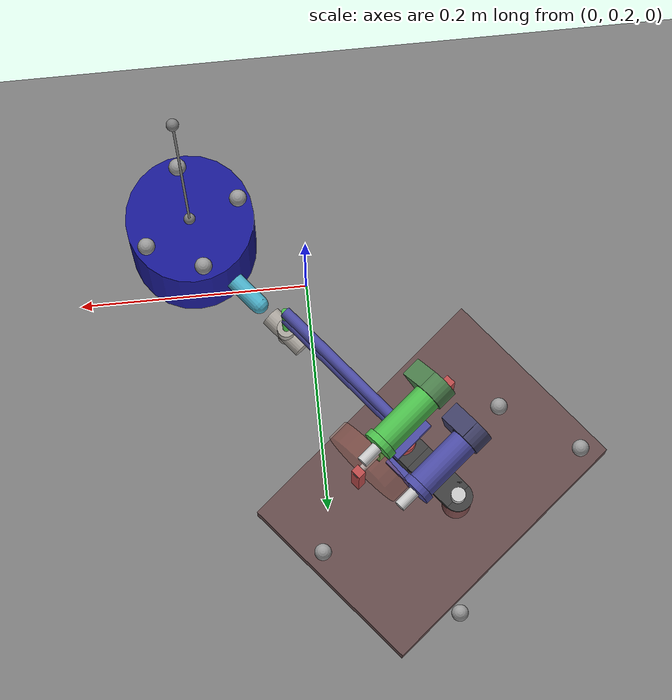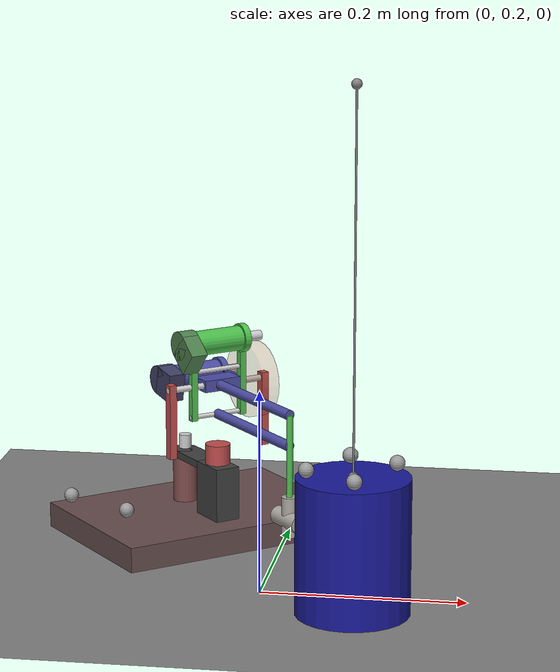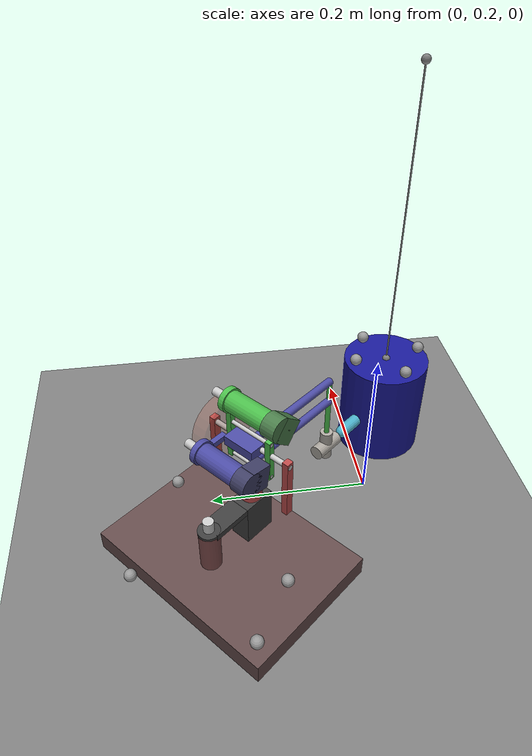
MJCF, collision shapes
<mujoco model="MuJoCo Model">
    <compiler coordinate="local" angle="radian" meshdir="../mesh/"/>
    <option solver="Newton" iterations="20" timestep="0.001"/>
    <size njmax="24" nconmax="8" nstack="-1" nuserdata="300" />
    <default>
    	<site size="0.005"/>
        <geom contype="0" conaffinity="0" />
        <joint limited="true" />
    </default>
    <asset>
        <mesh name="turret_mesh0" file="res.stl" />
        <material name="reflective" reflectance="0.5" rgba="0.5 0.5 0.5 1" />
    </asset>

    <worldbody>
         <light directional="false" cutoff="50" exponent="20" diffuse="1 1 1" specular="0 0 0" pos="0.095268765 0.156014352 1" dir="0 0 -1"/>

        <geom name="ground" type="plane" pos="0.095268765 0.156014352 0" quat="-0.340043 0.000555 0.000490 0.940410" size=".4 .4 .025" material="reflective" />
        <site name="cylhandle" pos="0.095268765 0.156014352 0.500684365"/>
        <!--body name="base0" pos="0.255 0 0.167" quat="0.707107 0 0 0.707107"-->
        <body name="base0" pos="-0.067579 0.356801 0.164011"
        	quat="-0.340043 0.000555 0.000490 0.940410">
            <inertial pos="0 0 -0.16" quat="0 0.707107 0 0.707107" mass="4" diaginertia="0.09 0.06 0.031" />
            <geom pos="0 -0.039 -0.1517" type="box" size="0.127 0.089 0.0127" rgba="0.4 0.3 0.3 1" />
            <geom pos="0 0 -0.1115" type="box" size="0.013 0.02 0.0275" rgba="0.25 0.25 0.25 1" />
            <geom pos="0 -0.044 -0.0877" type="box" size="0.013 0.024 0.0037" rgba="0.25 0.25 0.25 1" />
            <geom pos="0 -0.068 -0.1116" type="cylinder" size="0.0125 0.0275" rgba="0.5 0.3 0.3 1" />
            <geom pos="0 -0.068 -0.08565" type="cylinder" size="0.013 0.00165" rgba="0.25 0.25 0.25 1" />
            <geom pos="0 -0.068 -0.076" type="cylinder" size="0.00635 0.007" rgba="0.8 0.8 0.8 1" />
            <geom pos="0.110571 -0.111164 -0.129096" size="0.0075" rgba="0.6 0.6 0.6 1" />
            <geom pos="0.086607 -0.0349874 -0.128553" size="0.0075" rgba="0.6 0.6 0.6 1" />
            <geom pos="-0.11205 -0.0160656 -0.129504" size="0.0075" rgba="0.6 0.6 0.6 1" />
            <geom pos="-0.0639129 -0.13654 -0.153683" size="0.0075" rgba="0.6 0.6 0.6 1" />
            <body name="turret0" pos="0 0 0">
                <inertial pos="-0.01 -0.015 -0.06" quat="0.707107 0 0.707107 0" mass="0.1" diaginertia="0.00025 0.0002 7.5e-05" />
                <joint name="turret0" pos="0 0 0" axis="0 0 -1" range="-1.6 1.6" armature="0.000114164" damping="0.00101196" frictionloss="0.00387006" />
                <geom name="turret_mesh0" pos="0 0 -0.083" type="mesh" rgba="0.75 0.3 0.3 1" mesh="turret_mesh0" />
                <geom pos="0 0 -0.07284" type="cylinder" size="0.0127 0.01016" rgba="0.75 0.3 0.3 1" />
                <geom pos="0.05334 0 -0.0322" type="box" size="0.00381 0.004445 0.0381" rgba="0.75 0.3 0.3 1" />
                <geom pos="-0.05334 0 -0.0322" type="box" size="0.00381 0.004445 0.0381" rgba="0.75 0.3 0.3 1" />
                <geom quat="0.5 0.5 0.5 0.5" type="cylinder" size="0.0032 0.0572" rgba="0.8 0.8 0.8 1" />
                <geom pos="-0.04064 0 0" quat="0.707107 0 0.707107 0" type="cylinder" size="0.0381 0.00889" rgba="0.75 0.35 0.25 0.25" />
                <body name="shinmotor0" pos="0 0 0">
                    <inertial pos="0 -0.00693397 0.031663" quat="0.707107 0 0 -0.707107" mass="0.206998" diaginertia="0.000379796 0.000303837 0.000151918" />
                    <joint name="shinmotor0" pos="0 0 0" axis="-1 0 0" range="-2.9 0.5" armature="2.63635e-06" damping="0.00106479" frictionloss="0.00152026" />
                    <geom pos="0 0 0.04459" quat="0.5 0.5 0.5 0.5" type="cylinder" size="0.0125 0.0275" rgba="0.3 0.75 0.3 1" />
                    <geom pos="0.028 0 -0.008005" type="box" size="0.0034 0.0034 0.026645" rgba="0.3 0.75 0.3 1" />
                    <geom pos="-0.028 0 0.00667" type="box" size="0.0034 0.0034 0.04132" rgba="0.3 0.75 0.3 1" />
                    <geom pos="0.03639 0.00957556 0.0365552" quat="0.939693 -0.34202 0 0" type="box" size="0.00889 0.0125 0.0145" rgba="0.3 0.5 0.3 1" />
                    <geom pos="0 0 -0.03125" quat="0.5 0.5 0.5 0.5" type="cylinder" size="0.00235 0.0315" rgba="0.8 0.8 0.8 1" />
                    <geom pos="0 0 0.01524" quat="0.5 0.5 0.5 0.5" type="cylinder" size="0.00235 0.0315" rgba="0.8 0.8 0.8 1" />
                    <geom pos="-0.028 0 0.04459" quat="0.5 0.5 0.5 0.5" type="cylinder" size="0.0145 0.0034" rgba="0.3 0.75 0.3 1" />
                    <geom pos="0.03639 0 0.04459" quat="0.5 0.5 0.5 0.5" type="cylinder" size="0.0145 0.00889" rgba="0.3 0.5 0.3 1" />
                    <geom pos="-0.04064 0 0.04459" quat="0.5 0.5 0.5 0.5" type="cylinder" size="0.00508 0.00889" rgba="0.8 0.8 0.8 1" />
                    <body name="loop0" pos="0 0 -0.03125">
                        <inertial pos="0 0.06985 0" quat="0.707107 0.707107 0 0" mass="0.02" diaginertia="3.3e-05 3.3e-05 5e-07" />
                        <joint name="loop0" pos="0 0 0" axis="-1 0 0" range="-0.9 0.9" />
                        <geom pos="0 0.06985 0" quat="0.707107 0.707107 0 0" type="cylinder" size="0.005 0.06985" rgba="0.3 0.3 0.65 1" />
                    </body>
                </body>
                <body name="thigh0" pos="0 0 0">
                    <inertial pos="0 -0.0186431 -0.00402749" quat="0.5 -0.5 0.5 0.5" mass="0.374286" diaginertia="0.00074904 0.000665813 0.000104033" />
                    <joint name="thigh0" pos="0 0 0" axis="-1 0 0"  range="-2.1 1" armature="2.63635e-06" damping="0.000951496" frictionloss="0.00142239" />
                    <geom pos="0 -0.04459 0" quat="0.5 0.5 0.5 0.5" type="cylinder" size="0.0125 0.0275" rgba="0.3 0.3 0.65 1" />
                    <geom pos="-0.003 -0.005 0" type="box" size="0.02 0.011 0.006" rgba="0.3 0.3 0.65 1" />
                    <geom pos="-0.028 -0.027295 0" type="box" size="0.0034 0.017295 0.0034" rgba="0.3 0.3 0.65 1" />
                    <geom pos="0.03639 -0.0322799 -0.0021706" quat="0.996195 -0.0871557 0 0" type="box" size="0.00889 0.0125 0.0145" rgba="0.25 0.25 0.4 1" />
                    <geom pos="-0.028 -0.04459 0" quat="0.5 0.5 0.5 0.5" type="cylinder" size="0.0145 0.0034" rgba="0.3 0.3 0.65 1" />
                    <geom pos="0 0.06985 0" quat="0.707107 0.707107 0 0" type="cylinder" size="0.005 0.06985" rgba="0.3 0.3 0.65 1" />
                    <geom pos="0.03639 -0.04459 0" quat="0.5 0.5 0.5 0.5" type="cylinder" size="0.0145 0.00889" rgba="0.25 0.25 0.4 1" />
                    <geom pos="-0.04064 -0.04459 0" quat="0.5 0.5 0.5 0.5" type="cylinder" size="0.00508 0.00889" rgba="0.8 0.8 0.8 1" />
                    <body name="shin0" pos="0 0.1397 0">
                        <inertial pos="0 0.0093664 -0.096133" mass="0.0573557" diaginertia="1.01518e-05 9.13658e-06 2.84249e-06" />
                        <joint name="shin0" pos="0 0 0" axis="-1 0 0"  range="-0.9 0.9" />
                        <geom pos="0 0 -0.061" type="cylinder" size="0.0032 0.061" rgba="0.3 0.75 0.3 1" />
                        <geom name="cyl1" pos="0 0 -0.102" type="cylinder" size="0.008 0.02" rgba="0.68 0.66 0.63 1" />
                        <geom name="cyl2" pos="0.000599202 0 -0.105174" quat="0.707107 -0.707107 0 0" type="cylinder" size="0.009 0.02" rgba="0.68 0.66 0.63 1" />
                        <body name="ef0" pos="0 0 -0.105174">
                            <inertial pos="0 0.04 0" quat="0.707107 0.707107 0 0" mass="0.016" diaginertia="2e-06 2e-06 3e-07" />
                            <joint name="eflr0" pos="0 -0.05 0" axis="0 0 1"  stiffness="20" range="-0.1 0.1" damping="0.01" />
                            <joint name="efud0" pos="0 -0.05 0" axis="1 0 0"  stiffness="20" range="-0.1 0.1" damping="0.01" />
                            <joint name="efpush0" pos="0 0 0" axis="0 1 0" type="slide"  stiffness="500" range="-0.002 0.002" damping="0.01" />
                            <geom name="finger0" pos="0.000599202 0.0540992 0" quat="0.707107 -0.707107 0 0" type="capsule" size="0.008 0.02" rgba="0.3 0.7 0.8 1" />
                        </body>
                    </body>
                </body>
            </body>
        </body>
        <body name="object" pos="0.095268765 0.156014352 0.0665">
            <inertial pos="0 0 0" mass="0.284" diaginertia="0.00045 0.00045 0.00033" />
            <freejoint name="object" />
            <geom name="object" type="cylinder" size="0.055 0.0665" rgba="0.1 0.1 0.6 1" />
            <geom pos="0.00619587 -0.0438262 0.0753399" size="0.0075" rgba="0.6 0.6 0.6 1" />
            <geom pos="0.0385259 0.0222627 0.0757222" size="0.0075" rgba="0.6 0.6 0.6 1" />
            <geom pos="-0.00827415 0.0434504 0.0751261" size="0.0075" rgba="0.6 0.6 0.6 1" />
            <geom pos="-0.0427617 -0.0123001 0.0752118" size="0.0075" rgba="0.6 0.6 0.6 1" />
            <geom pos="-0.046581 -0.001348 -0.000477" quat="0.00500436 0.666689 -0.00409452 0.745308" type="box" size="0.0077 0.0105 0.0008" />
            <site name="imu" pos="-0.046581 -0.001348 -0.000477" quat="0.00500436 0.666689 -0.00409452 0.745308" />
            <site name="topcenter" pos="0 0 0.0665" />
        </body>
    </worldbody>
    <contact>
        <pair geom1="finger0" geom2="object" margin="0.2" gap="0.199" friction="1 1 1 1 1" />
        <pair geom1="ground" geom2="object" />
        <pair geom1="ground" geom2="finger0" />
        <pair geom1="ground" geom2="cyl1" />
        <pair geom1="ground" geom2="cyl2" />
        <pair geom1="object" geom2="cyl1" />
        <pair geom1="object" geom2="cyl2" />
    </contact>
    <equality>
        <tendon name="constrainta0" tendon1="tendona0" polycoef="0 1 0 0 0" />
        <tendon name="constraintb0" tendon1="tendonb0" polycoef="0 1 0 0 0" />
    </equality>
    <tendon>
        <fixed name="tendona0">
            <joint joint="shinmotor0" coef="-1" />
            <joint joint="thigh0" coef="1" />
            <joint joint="loop0" coef="-1" />
        </fixed>
        <fixed name="tendonb0">
            <joint joint="shinmotor0" coef="1" />
            <joint joint="thigh0" coef="-1" />
            <joint joint="shin0" coef="-1" />
        </fixed>
        <spatial name="cylstring" limited="true" width="0.001" range="-10 0.349" margin="0.0003">
            <site site="cylhandle" />
            <site site="topcenter" />
        </spatial>
    </tendon>
</mujoco>
